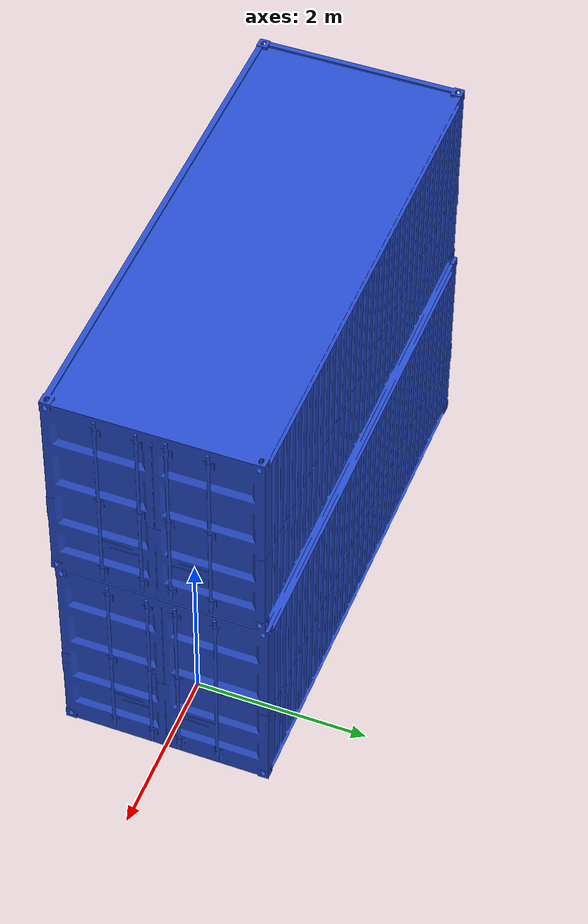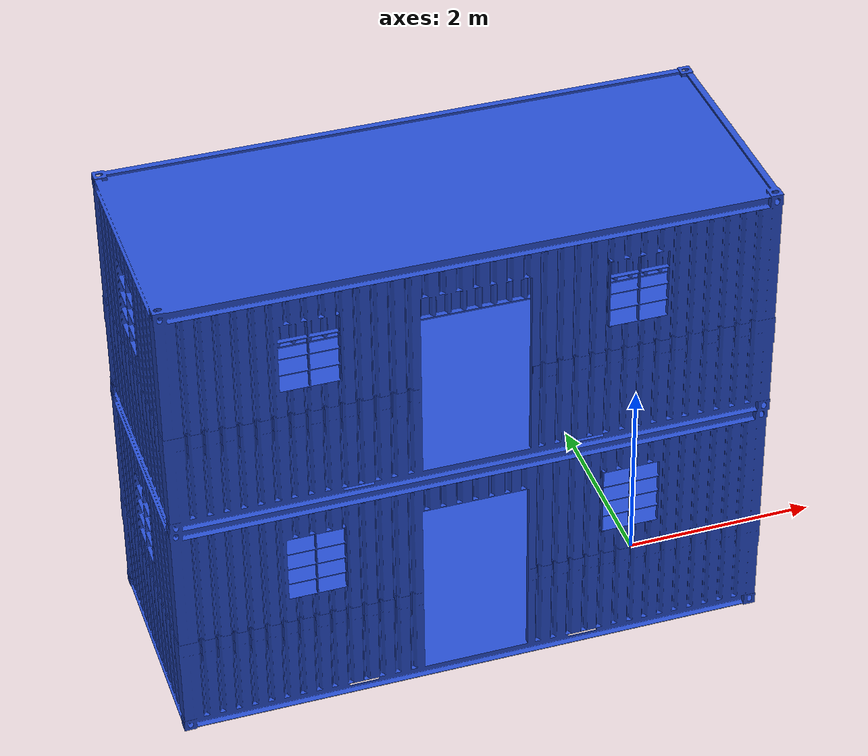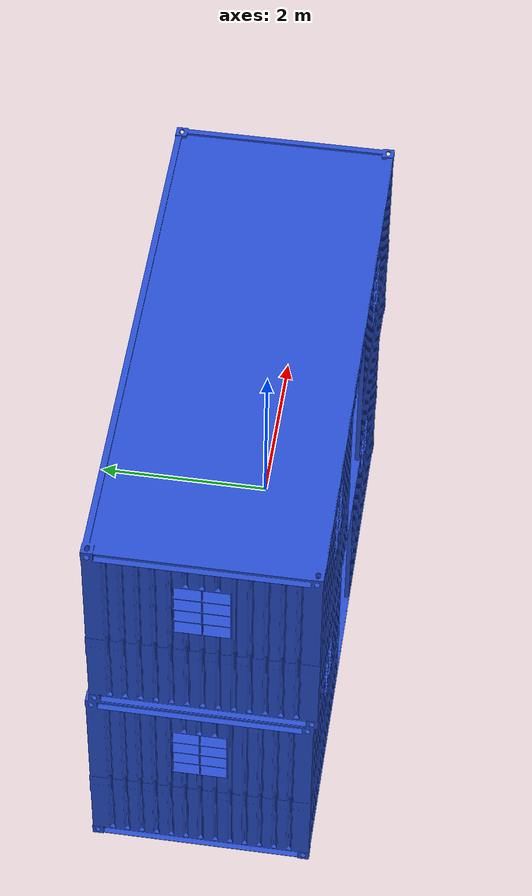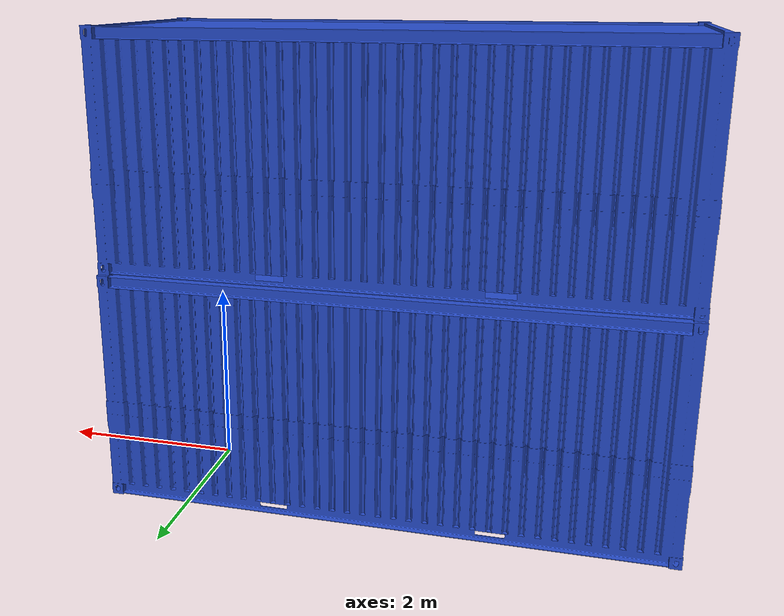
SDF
<?xml version='1.0'?>
<sdf version="1.7">
  <model name="containers">
    <static>true</static>
    <link name="containers_link">
      <collision name="containers_collision">
        <geometry>
          <mesh>
            <uri>/home/brayan/catkin_ws/src/WorldMine/Containers/Containers.stl</uri>
          </mesh>
        </geometry>
      </collision>
      <visual name="containers_visual">
        <geometry>
          <mesh>
            <uri>/home/brayan/catkin_ws/src/WorldMine/Containers/Containers.stl</uri>
          </mesh>
         </geometry>
         <material>
          <script>
            <uri>file://media/materials/scripts/gazebo.material</uri>
            <name>Gazebo/Blue</name>
          </script>
        </material>
       </visual>
    </link>
  </model>
</sdf>
